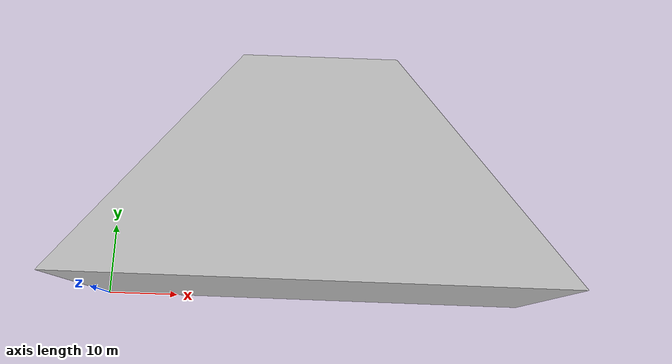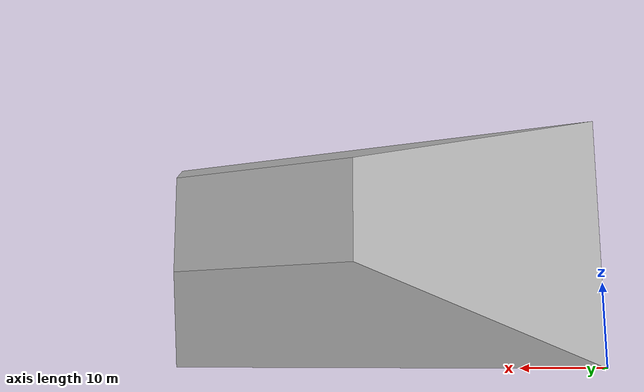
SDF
<?xml version="1.0" ?>
<sdf version="1.6">
  <model name="prism">
    <static>true</static>
    <link name="link">
      <collision name="collision">
        <geometry>
          <mesh>
            <scale>0.1 0.1 0.1</scale>
            <uri>model://prism/meshes/prism.stl</uri>
          </mesh>
           <surface>
            <friction>
              <ode>
                <mu>1.2</mu>
                <mu2>1.2</mu2>
              </ode>
            </friction>
          </surface>
        </geometry>
      </collision>
      <visual name="visual">
        <geometry>
          <mesh>
            <scale>0.1 0.1 0.1</scale>
            <uri>model://prism/meshes/prism.dae</uri>
          </mesh>
        </geometry>
      </visual>
    </link>
  </model>
</sdf>
